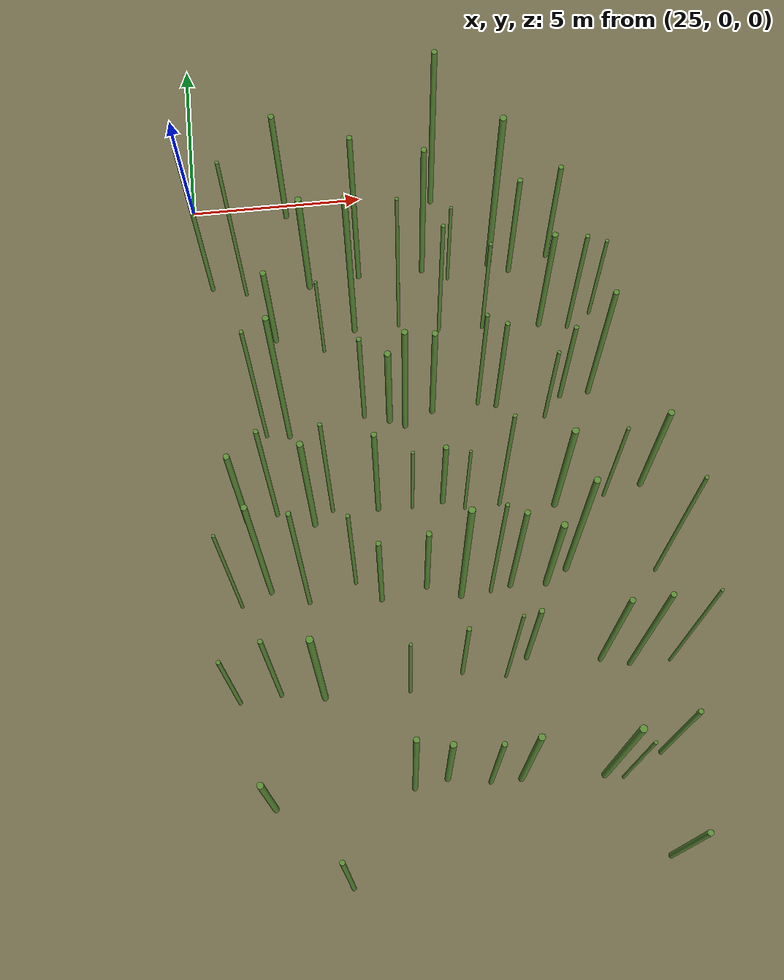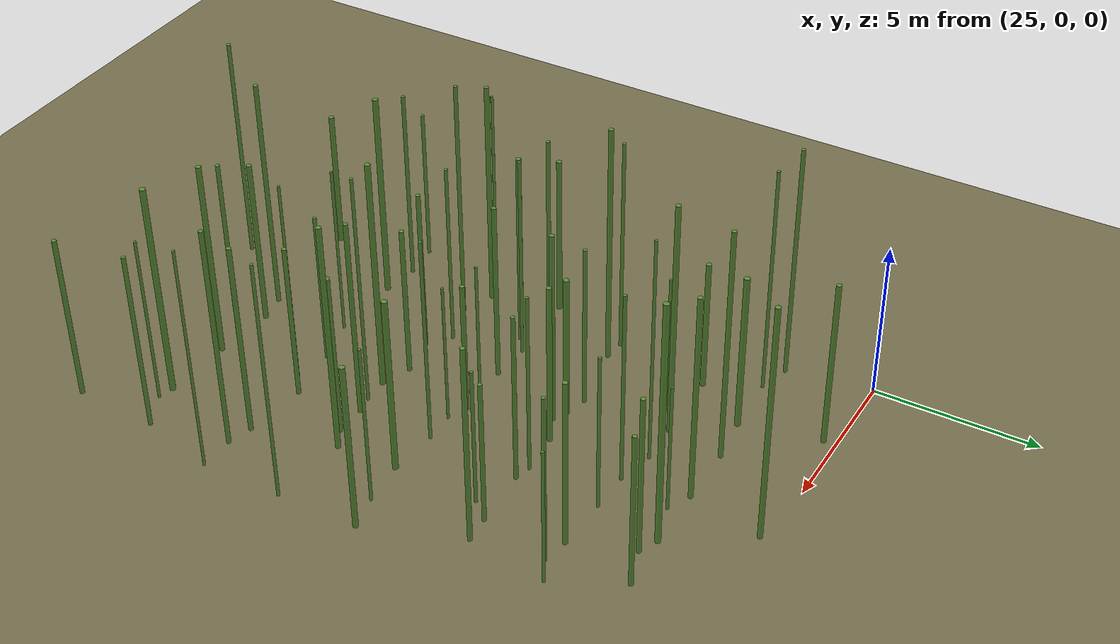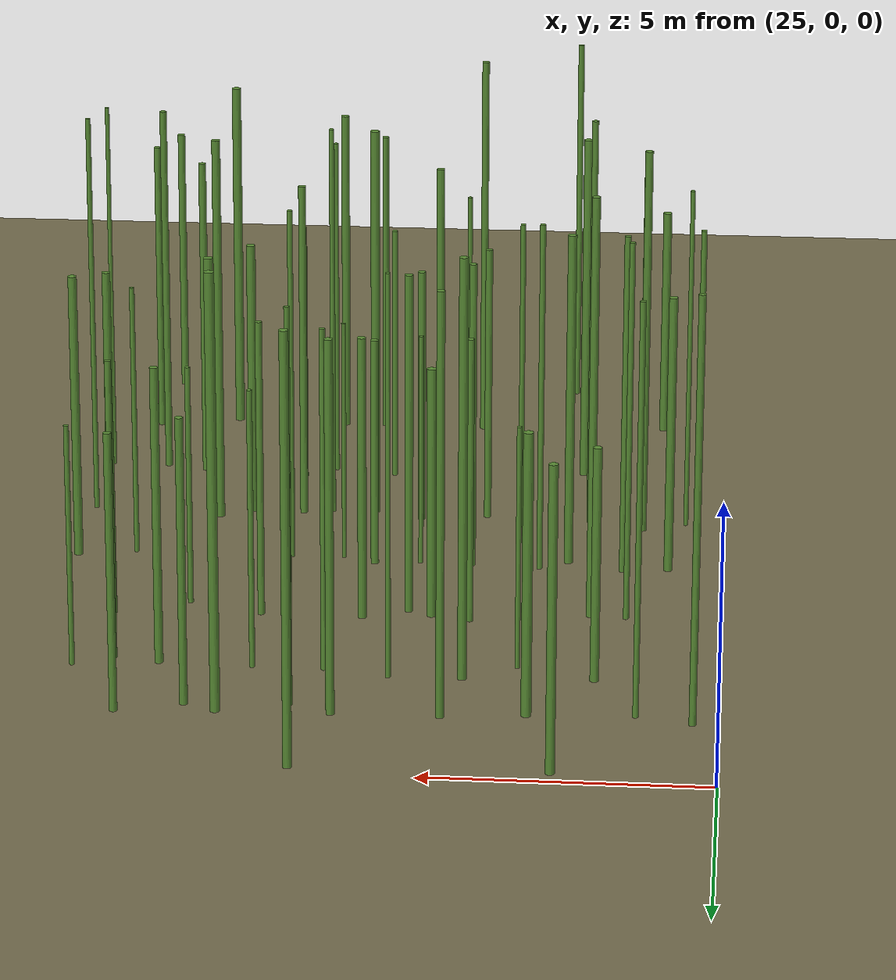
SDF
<sdf version="1.9">
 <world name="bamboo_field">
  <model name="ground_plane">
   <static>true</static>
   <link name="link">
    <collision name="collision">
     <geometry><plane><normal>0 0 1</normal><size>80.0 80.0</size></plane></geometry>
    </collision>
    <visual name="visual">
     <geometry><plane><normal>0 0 1</normal><size>80.0 80.0</size></plane></geometry>
     <material><diffuse>0.45 0.42 0.30 1</diffuse></material>
    </visual>
   </link>
  </model>
  <model name="bamboo_533">
   <static>true</static>
   <pose>28.188244298677958 -19.870869130054743 3.701343156073168 0 0 0</pose>
   <link name="link">
    <collision name="collision">
     <geometry>
      <cylinder><radius>0.05928577448796571</radius><length>7.402686312146336</length></cylinder>
     </geometry>
    </collision>
    <visual name="visual">
     <geometry>
      <cylinder><radius>0.05928577448796571</radius><length>7.402686312146336</length></cylinder>
     </geometry>
     <material><diffuse>0.35 0.55 0.20 1</diffuse><specular>0.1 0.1 0.1 1</specular></material>
    </visual>
   </link>
  </model>
  <model name="bamboo_537">
   <static>true</static>
   <pose>36.34750576949081 -19.83465553975704 2.6766012835368462 0 0 0</pose>
   <link name="link">
    <collision name="collision">
     <geometry>
      <cylinder><radius>0.07349221791071578</radius><length>5.3532025670736925</length></cylinder>
     </geometry>
    </collision>
    <visual name="visual">
     <geometry>
      <cylinder><radius>0.07349221791071578</radius><length>5.3532025670736925</length></cylinder>
     </geometry>
     <material><diffuse>0.35 0.55 0.20 1</diffuse><specular>0.1 0.1 0.1 1</specular></material>
    </visual>
   </link>
  </model>
  <model name="bamboo_597">
   <static>true</static>
   <pose>26.34279256075111 -17.72476737025921 2.2800033374324 0 0 0</pose>
   <link name="link">
    <collision name="collision">
     <geometry><cylinder><radius>0.08293568276853996</radius><length>4.5600066748648</length></cylinder></geometry>
    </collision>
    <visual name="visual">
     <geometry><cylinder><radius>0.08293568276853996</radius><length>4.5600066748648</length></cylinder></geometry>
     <material><diffuse>0.35 0.55 0.20 1</diffuse><specular>0.1 0.1 0.1 1</specular></material>
    </visual>
   </link>
  </model>
  <model name="bamboo_598">
   <static>true</static>
   <pose>29.972197570025518 -17.528603098932038 3.8126071547963667 0 0 0</pose>
   <link name="link">
    <collision name="collision">
     <geometry>
      <cylinder><radius>0.0695018155920359</radius><length>7.625214309592733</length></cylinder>
     </geometry>
    </collision>
    <visual name="visual">
     <geometry>
      <cylinder><radius>0.0695018155920359</radius><length>7.625214309592733</length></cylinder>
     </geometry>
     <material><diffuse>0.35 0.55 0.20 1</diffuse><specular>0.1 0.1 0.1 1</specular></material>
    </visual>
   </link>
  </model>
  <model name="bamboo_599">
   <static>true</static>
   <pose>30.841887694398995 -17.368530235182398 2.731637260206019 0 0 0</pose>
   <link name="link">
    <collision name="collision">
     <geometry>
      <cylinder><radius>0.0787598619418714</radius><length>5.463274520412038</length></cylinder>
     </geometry>
    </collision>
    <visual name="visual">
     <geometry>
      <cylinder><radius>0.0787598619418714</radius><length>5.463274520412038</length></cylinder>
     </geometry>
     <material><diffuse>0.35 0.55 0.20 1</diffuse><specular>0.1 0.1 0.1 1</specular></material>
    </visual>
   </link>
  </model>
  <model name="bamboo_600">
   <static>true</static>
   <pose>31.956613382301903 -17.55751453690822 3.020823986687571 0 0 0</pose>
   <link name="link">
    <collision name="collision">
     <geometry>
      <cylinder><radius>0.06323505710852263</radius><length>6.041647973375142</length></cylinder>
     </geometry>
    </collision>
    <visual name="visual">
     <geometry>
      <cylinder><radius>0.06323505710852263</radius><length>6.041647973375142</length></cylinder>
     </geometry>
     <material><diffuse>0.35 0.55 0.20 1</diffuse><specular>0.1 0.1 0.1 1</specular></material>
    </visual>
   </link>
  </model>
  <model name="bamboo_601">
   <static>true</static>
   <pose>32.7600256541211 -17.549135949313253 3.2280719531202564 0 0 0</pose>
   <link name="link">
    <collision name="collision">
     <geometry>
      <cylinder><radius>0.08032700284639492</radius><length>6.456143906240513</length></cylinder>
     </geometry>
    </collision>
    <visual name="visual">
     <geometry>
      <cylinder><radius>0.08032700284639492</radius><length>6.456143906240513</length></cylinder>
     </geometry>
     <material><diffuse>0.35 0.55 0.20 1</diffuse><specular>0.1 0.1 0.1 1</specular></material>
    </visual>
   </link>
  </model>
  <model name="bamboo_602">
   <static>true</static>
   <pose>34.940360468888585 -17.657874748482655 3.471839617669649 0 0 0</pose>
   <link name="link">
    <collision name="collision">
     <geometry>
      <cylinder><radius>0.08838677799187565</radius><length>6.943679235339298</length></cylinder>
     </geometry>
    </collision>
    <visual name="visual">
     <geometry>
      <cylinder><radius>0.08838677799187565</radius><length>6.943679235339298</length></cylinder>
     </geometry>
     <material><diffuse>0.35 0.55 0.20 1</diffuse><specular>0.1 0.1 0.1 1</specular></material>
    </visual>
   </link>
  </model>
  <model name="bamboo_603">
   <static>true</static>
   <pose>35.41940163337004 -17.764289773372468 2.738870370894949 0 0 0</pose>
   <link name="link">
    <collision name="collision">
     <geometry>
      <cylinder><radius>0.04314305807067346</radius><length>5.477740741789898</length></cylinder>
     </geometry>
    </collision>
    <visual name="visual">
     <geometry>
      <cylinder><radius>0.04314305807067346</radius><length>5.477740741789898</length></cylinder>
     </geometry>
     <material><diffuse>0.35 0.55 0.20 1</diffuse><specular>0.1 0.1 0.1 1</specular></material>
    </visual>
   </link>
  </model>
  <model name="bamboo_604">
   <static>true</static>
   <pose>36.485032382063 -17.222618778230547 2.9092868995897767 0 0 0</pose>
   <link name="link">
    <collision name="collision">
     <geometry>
      <cylinder><radius>0.06348371145051045</radius><length>5.818573799179553</length></cylinder>
     </geometry>
    </collision>
    <visual name="visual">
     <geometry>
      <cylinder><radius>0.06348371145051045</radius><length>5.818573799179553</length></cylinder>
     </geometry>
     <material><diffuse>0.35 0.55 0.20 1</diffuse><specular>0.1 0.1 0.1 1</specular></material>
    </visual>
   </link>
  </model>
  <model name="bamboo_663">
   <static>true</static>
   <pose>25.577622832256342 -14.878679475593929 2.5349447817412756 0 0 0</pose>
   <link name="link">
    <collision name="collision">
     <geometry>
      <cylinder><radius>0.05456781763972099</radius><length>5.069889563482551</length></cylinder>
     </geometry>
    </collision>
    <visual name="visual">
     <geometry>
      <cylinder><radius>0.05456781763972099</radius><length>5.069889563482551</length></cylinder>
     </geometry>
     <material><diffuse>0.35 0.55 0.20 1</diffuse><specular>0.1 0.1 0.1 1</specular></material>
    </visual>
   </link>
  </model>
  <model name="bamboo_664">
   <static>true</static>
   <pose>26.680199405082647 -14.778760803928302 3.173839547052021 0 0 0</pose>
   <link name="link">
    <collision name="collision">
     <geometry>
      <cylinder><radius>0.058158242012521434</radius><length>6.347679094104042</length></cylinder>
     </geometry>
    </collision>
    <visual name="visual">
     <geometry>
      <cylinder><radius>0.058158242012521434</radius><length>6.347679094104042</length></cylinder>
     </geometry>
     <material><diffuse>0.35 0.55 0.20 1</diffuse><specular>0.1 0.1 0.1 1</specular></material>
    </visual>
   </link>
  </model>
  <model name="bamboo_665">
   <static>true</static>
   <pose>27.8250399448341 -14.951715821012117 3.4013938568493685 0 0 0</pose>
   <link name="link">
    <collision name="collision">
     <geometry>
      <cylinder><radius>0.08702186686689978</radius><length>6.802787713698737</length></cylinder>
     </geometry>
    </collision>
    <visual name="visual">
     <geometry>
      <cylinder><radius>0.08702186686689978</radius><length>6.802787713698737</length></cylinder>
     </geometry>
     <material><diffuse>0.35 0.55 0.20 1</diffuse><specular>0.1 0.1 0.1 1</specular></material>
    </visual>
   </link>
  </model>
  <model name="bamboo_666">
   <static>true</static>
   <pose>30.097172205017387 -15.010277305566392 2.7940250415203387 0 0 0</pose>
   <link name="link">
    <collision name="collision">
     <geometry>
      <cylinder><radius>0.041318245668312055</radius><length>5.588050083040677</length></cylinder>
     </geometry>
    </collision>
    <visual name="visual">
     <geometry>
      <cylinder><radius>0.041318245668312055</radius><length>5.588050083040677</length></cylinder>
     </geometry>
     <material><diffuse>0.35 0.55 0.20 1</diffuse><specular>0.1 0.1 0.1 1</specular></material>
    </visual>
   </link>
  </model>
  <model name="bamboo_667">
   <static>true</static>
   <pose>31.52751141648787 -14.630016667301541 2.4947930386303847 0 0 0</pose>
   <link name="link">
    <collision name="collision">
     <geometry>
      <cylinder><radius>0.05546853267749993</radius><length>4.989586077260769</length></cylinder>
     </geometry>
    </collision>
    <visual name="visual">
     <geometry>
      <cylinder><radius>0.05546853267749993</radius><length>4.989586077260769</length></cylinder>
     </geometry>
     <material><diffuse>0.35 0.55 0.20 1</diffuse><specular>0.1 0.1 0.1 1</specular></material>
    </visual>
   </link>
  </model>
  <model name="bamboo_668">
   <static>true</static>
   <pose>32.683357736887324 -14.840912224880338 3.327098270607609 0 0 0</pose>
   <link name="link">
    <collision name="collision">
     <geometry>
      <cylinder><radius>0.04142856465099565</radius><length>6.654196541215218</length></cylinder>
     </geometry>
    </collision>
    <visual name="visual">
     <geometry>
      <cylinder><radius>0.04142856465099565</radius><length>6.654196541215218</length></cylinder>
     </geometry>
     <material><diffuse>0.35 0.55 0.20 1</diffuse><specular>0.1 0.1 0.1 1</specular></material>
    </visual>
   </link>
  </model>
  <model name="bamboo_669">
   <static>true</static>
   <pose>33.282952913619624 -14.389873561351692 2.5448288552246283 0 0 0</pose>
   <link name="link">
    <collision name="collision">
     <geometry>
      <cylinder><radius>0.06702920806961415</radius><length>5.089657710449257</length></cylinder>
     </geometry>
    </collision>
    <visual name="visual">
     <geometry>
      <cylinder><radius>0.06702920806961415</radius><length>5.089657710449257</length></cylinder>
     </geometry>
     <material><diffuse>0.35 0.55 0.20 1</diffuse><specular>0.1 0.1 0.1 1</specular></material>
    </visual>
   </link>
  </model>
  <model name="bamboo_670">
   <static>true</static>
   <pose>35.25606615430571 -14.620883372442306 3.1279689734425746 0 0 0</pose>
   <link name="link">
    <collision name="collision">
     <geometry>
      <cylinder><radius>0.07179255682129179</radius><length>6.255937946885149</length></cylinder>
     </geometry>
    </collision>
    <visual name="visual">
     <geometry>
      <cylinder><radius>0.07179255682129179</radius><length>6.255937946885149</length></cylinder>
     </geometry>
     <material><diffuse>0.35 0.55 0.20 1</diffuse><specular>0.1 0.1 0.1 1</specular></material>
    </visual>
   </link>
  </model>
  <model name="bamboo_671">
   <static>true</static>
   <pose>36.02281103640672 -14.81250482117601 3.609415532492906 0 0 0</pose>
   <link name="link">
    <collision name="collision">
     <geometry>
      <cylinder><radius>0.06698340610680298</radius><length>7.218831064985812</length></cylinder>
     </geometry>
    </collision>
    <visual name="visual">
     <geometry>
      <cylinder><radius>0.06698340610680298</radius><length>7.218831064985812</length></cylinder>
     </geometry>
     <material><diffuse>0.35 0.55 0.20 1</diffuse><specular>0.1 0.1 0.1 1</specular></material>
    </visual>
   </link>
  </model>
  <model name="bamboo_672">
   <static>true</static>
   <pose>37.110994181946104 -14.827833704464878 3.6307595783217765 0 0 0</pose>
   <link name="link">
    <collision name="collision">
     <geometry>
      <cylinder><radius>0.0400046173197464</radius><length>7.261519156643553</length></cylinder>
     </geometry>
    </collision>
    <visual name="visual">
     <geometry>
      <cylinder><radius>0.0400046173197464</radius><length>7.261519156643553</length></cylinder>
     </geometry>
     <material><diffuse>0.35 0.55 0.20 1</diffuse><specular>0.1 0.1 0.1 1</specular></material>
    </visual>
   </link>
  </model>
  <model name="bamboo_730">
   <static>true</static>
   <pose>25.77504964864665 -12.270938883827762 3.309515743630774 0 0 0</pose>
   <link name="link">
    <collision name="collision">
     <geometry>
      <cylinder><radius>0.04265426243281395</radius><length>6.619031487261548</length></cylinder>
     </geometry>
    </collision>
    <visual name="visual">
     <geometry>
      <cylinder><radius>0.04265426243281395</radius><length>6.619031487261548</length></cylinder>
     </geometry>
     <material><diffuse>0.35 0.55 0.20 1</diffuse><specular>0.1 0.1 0.1 1</specular></material>
    </visual>
   </link>
  </model>
  <model name="bamboo_731">
   <static>true</static>
   <pose>26.59109470435882 -11.93580317689551 3.728564547119907 0 0 0</pose>
   <link name="link">
    <collision name="collision">
     <geometry>
      <cylinder><radius>0.07300501866646825</radius><length>7.457129094239814</length></cylinder>
     </geometry>
    </collision>
    <visual name="visual">
     <geometry>
      <cylinder><radius>0.07300501866646825</radius><length>7.457129094239814</length></cylinder>
     </geometry>
     <material><diffuse>0.35 0.55 0.20 1</diffuse><specular>0.1 0.1 0.1 1</specular></material>
    </visual>
   </link>
  </model>
  <model name="bamboo_732">
   <static>true</static>
   <pose>27.607226933795555 -12.322171308377502 3.953223879779708 0 0 0</pose>
   <link name="link">
    <collision name="collision">
     <geometry>
      <cylinder><radius>0.059035060148142394</radius><length>7.906447759559416</length></cylinder>
     </geometry>
    </collision>
    <visual name="visual">
     <geometry>
      <cylinder><radius>0.059035060148142394</radius><length>7.906447759559416</length></cylinder>
     </geometry>
     <material><diffuse>0.35 0.55 0.20 1</diffuse><specular>0.1 0.1 0.1 1</specular></material>
    </visual>
   </link>
  </model>
  <model name="bamboo_733">
   <static>true</static>
   <pose>28.904803817220472 -11.894545505775143 3.0013016457377577 0 0 0</pose>
   <link name="link">
    <collision name="collision">
     <geometry>
      <cylinder><radius>0.04932086937087595</radius><length>6.002603291475515</length></cylinder>
     </geometry>
    </collision>
    <visual name="visual">
     <geometry>
      <cylinder><radius>0.04932086937087595</radius><length>6.002603291475515</length></cylinder>
     </geometry>
     <material><diffuse>0.35 0.55 0.20 1</diffuse><specular>0.1 0.1 0.1 1</specular></material>
    </visual>
   </link>
  </model>
  <model name="bamboo_734">
   <static>true</static>
   <pose>29.568188689481858 -12.433086811480065 2.6671392692615514 0 0 0</pose>
   <link name="link">
    <collision name="collision">
     <geometry>
      <cylinder><radius>0.06647076819275599</radius><length>5.334278538523103</length></cylinder>
     </geometry>
    </collision>
    <visual name="visual">
     <geometry>
      <cylinder><radius>0.06647076819275599</radius><length>5.334278538523103</length></cylinder>
     </geometry>
     <material><diffuse>0.35 0.55 0.20 1</diffuse><specular>0.1 0.1 0.1 1</specular></material>
    </visual>
   </link>
  </model>
  <model name="bamboo_735">
   <static>true</static>
   <pose>30.816291765236965 -12.192114464069636 2.472409531414425 0 0 0</pose>
   <link name="link">
    <collision name="collision">
     <geometry>
      <cylinder><radius>0.07126154851255051</radius><length>4.94481906282885</length></cylinder>
     </geometry>
    </collision>
    <visual name="visual">
     <geometry>
      <cylinder><radius>0.07126154851255051</radius><length>4.94481906282885</length></cylinder>
     </geometry>
     <material><diffuse>0.35 0.55 0.20 1</diffuse><specular>0.1 0.1 0.1 1</specular></material>
    </visual>
   </link>
  </model>
  <model name="bamboo_736">
   <static>true</static>
   <pose>31.72667896858052 -12.522364357975002 3.7808041721575227 0 0 0</pose>
   <link name="link">
    <collision name="collision">
     <geometry>
      <cylinder><radius>0.08393386370955802</radius><length>7.5616083443150455</length></cylinder>
     </geometry>
    </collision>
    <visual name="visual">
     <geometry>
      <cylinder><radius>0.08393386370955802</radius><length>7.5616083443150455</length></cylinder>
     </geometry>
     <material><diffuse>0.35 0.55 0.20 1</diffuse><specular>0.1 0.1 0.1 1</specular></material>
    </visual>
   </link>
  </model>
  <model name="bamboo_737">
   <static>true</static>
   <pose>32.53810589410914 -12.481533974897536 3.794350629938343 0 0 0</pose>
   <link name="link">
    <collision name="collision">
     <geometry>
      <cylinder><radius>0.04758540903843423</radius><length>7.588701259876686</length></cylinder>
     </geometry>
    </collision>
    <visual name="visual">
     <geometry>
      <cylinder><radius>0.04758540903843423</radius><length>7.588701259876686</length></cylinder>
     </geometry>
     <material><diffuse>0.35 0.55 0.20 1</diffuse><specular>0.1 0.1 0.1 1</specular></material>
    </visual>
   </link>
  </model>
  <model name="bamboo_738">
   <static>true</static>
   <pose>33.09033609580304 -12.374737921174244 3.2510492009896534 0 0 0</pose>
   <link name="link">
    <collision name="collision">
     <geometry>
      <cylinder><radius>0.07062241966750527</radius><length>6.502098401979307</length></cylinder>
     </geometry>
    </collision>
    <visual name="visual">
     <geometry>
      <cylinder><radius>0.07062241966750527</radius><length>6.502098401979307</length></cylinder>
     </geometry>
     <material><diffuse>0.35 0.55 0.20 1</diffuse><specular>0.1 0.1 0.1 1</specular></material>
    </visual>
   </link>
  </model>
  <model name="bamboo_739">
   <static>true</static>
   <pose>34.07179979909784 -12.39826039463094 2.658569476741093 0 0 0</pose>
   <link name="link">
    <collision name="collision">
     <geometry>
      <cylinder><radius>0.08548676967820856</radius><length>5.317138953482186</length></cylinder>
     </geometry>
    </collision>
    <visual name="visual">
     <geometry>
      <cylinder><radius>0.08548676967820856</radius><length>5.317138953482186</length></cylinder>
     </geometry>
     <material><diffuse>0.35 0.55 0.20 1</diffuse><specular>0.1 0.1 0.1 1</specular></material>
    </visual>
   </link>
  </model>
  <model name="bamboo_740">
   <static>true</static>
   <pose>34.66396566128665 -12.049395015444077 3.725175323160136 0 0 0</pose>
   <link name="link">
    <collision name="collision">
     <geometry>
      <cylinder><radius>0.08000525295820468</radius><length>7.450350646320272</length></cylinder>
     </geometry>
    </collision>
    <visual name="visual">
     <geometry>
      <cylinder><radius>0.08000525295820468</radius><length>7.450350646320272</length></cylinder>
     </geometry>
     <material><diffuse>0.35 0.55 0.20 1</diffuse><specular>0.1 0.1 0.1 1</specular></material>
    </visual>
   </link>
  </model>
  <model name="bamboo_741">
   <static>true</static>
   <pose>37.09744178193807 -12.32074313930429 3.8660598928458136 0 0 0</pose>
   <link name="link">
    <collision name="collision">
     <geometry>
      <cylinder><radius>0.04725761974462559</radius><length>7.732119785691627</length></cylinder>
     </geometry>
    </collision>
    <visual name="visual">
     <geometry>
      <cylinder><radius>0.04725761974462559</radius><length>7.732119785691627</length></cylinder>
     </geometry>
     <material><diffuse>0.35 0.55 0.20 1</diffuse><specular>0.1 0.1 0.1 1</specular></material>
    </visual>
   </link>
  </model>
  <model name="bamboo_802">
   <static>true</static>
   <pose>26.053106192769913 -9.862088774737488 2.651739456596223 0 0 0</pose>
   <link name="link">
    <collision name="collision">
     <geometry>
      <cylinder><radius>0.07983788866809804</radius><length>5.303478913192446</length></cylinder>
     </geometry>
    </collision>
    <visual name="visual">
     <geometry>
      <cylinder><radius>0.07983788866809804</radius><length>5.303478913192446</length></cylinder>
     </geometry>
     <material><diffuse>0.35 0.55 0.20 1</diffuse><specular>0.1 0.1 0.1 1</specular></material>
    </visual>
   </link>
  </model>
  <model name="bamboo_803">
   <static>true</static>
   <pose>26.895152742284278 -9.735066220562084 3.241749677713082 0 0 0</pose>
   <link name="link">
    <collision name="collision">
     <geometry>
      <cylinder><radius>0.06067209528333518</radius><length>6.483499355426164</length></cylinder>
     </geometry>
    </collision>
    <visual name="visual">
     <geometry>
      <cylinder><radius>0.06067209528333518</radius><length>6.483499355426164</length></cylinder>
     </geometry>
     <material><diffuse>0.35 0.55 0.20 1</diffuse><specular>0.1 0.1 0.1 1</specular></material>
    </visual>
   </link>
  </model>
  <model name="bamboo_804">
   <static>true</static>
   <pose>27.914134797331833 -10.11204283680025 3.1819403980843495 0 0 0</pose>
   <link name="link">
    <collision name="collision">
     <geometry>
      <cylinder><radius>0.08069578524457657</radius><length>6.363880796168699</length></cylinder>
     </geometry>
    </collision>
    <visual name="visual">
     <geometry>
      <cylinder><radius>0.08069578524457657</radius><length>6.363880796168699</length></cylinder>
     </geometry>
     <material><diffuse>0.35 0.55 0.20 1</diffuse><specular>0.1 0.1 0.1 1</specular></material>
    </visual>
   </link>
  </model>
  <model name="bamboo_805">
   <static>true</static>
   <pose>28.434571803747957 -9.765186151062816 3.3252245138526737 0 0 0</pose>
   <link name="link">
    <collision name="collision">
     <geometry>
      <cylinder><radius>0.0518077159572711</radius><length>6.650449027705347</length></cylinder>
     </geometry>
    </collision>
    <visual name="visual">
     <geometry>
      <cylinder><radius>0.0518077159572711</radius><length>6.650449027705347</length></cylinder>
     </geometry>
     <material><diffuse>0.35 0.55 0.20 1</diffuse><specular>0.1 0.1 0.1 1</specular></material>
    </visual>
   </link>
  </model>
  <model name="bamboo_806">
   <static>true</static>
   <pose>29.698282429109607 -9.84137429579646 2.9258168686237647 0 0 0</pose>
   <link name="link">
    <collision name="collision">
     <geometry>
      <cylinder><radius>0.0696081567541046</radius><length>5.851633737247529</length></cylinder>
     </geometry>
    </collision>
    <visual name="visual">
     <geometry>
      <cylinder><radius>0.0696081567541046</radius><length>5.851633737247529</length></cylinder>
     </geometry>
     <material><diffuse>0.35 0.55 0.20 1</diffuse><specular>0.1 0.1 0.1 1</specular></material>
    </visual>
   </link>
  </model>
  <model name="bamboo_807">
   <static>true</static>
   <pose>30.650037343127675 -9.876850067206815 2.2174892676697473 0 0 0</pose>
   <link name="link">
    <collision name="collision">
     <geometry>
      <cylinder><radius>0.043480381741471286</radius><length>4.434978535339495</length></cylinder>
     </geometry>
    </collision>
    <visual name="visual">
     <geometry>
      <cylinder><radius>0.043480381741471286</radius><length>4.434978535339495</length></cylinder>
     </geometry>
     <material><diffuse>0.35 0.55 0.20 1</diffuse><specular>0.1 0.1 0.1 1</specular></material>
    </visual>
   </link>
  </model>
  <model name="bamboo_808">
   <static>true</static>
   <pose>31.50367855742927 -9.795707356814404 2.1810660096647108 0 0 0</pose>
   <link name="link">
    <collision name="collision">
     <geometry>
      <cylinder><radius>0.07300823795105599</radius><length>4.3621320193294215</length></cylinder>
     </geometry>
    </collision>
    <visual name="visual">
     <geometry>
      <cylinder><radius>0.07300823795105599</radius><length>4.3621320193294215</length></cylinder>
     </geometry>
     <material><diffuse>0.35 0.55 0.20 1</diffuse><specular>0.1 0.1 0.1 1</specular></material>
    </visual>
   </link>
  </model>
  <model name="bamboo_809">
   <static>true</static>
   <pose>32.09750894861154 -10.04491135766357 2.293450708104393 0 0 0</pose>
   <link name="link">
    <collision name="collision">
     <geometry>
      <cylinder><radius>0.04000921702276085</radius><length>4.586901416208786</length></cylinder>
     </geometry>
    </collision>
    <visual name="visual">
     <geometry>
      <cylinder><radius>0.04000921702276085</radius><length>4.586901416208786</length></cylinder>
     </geometry>
     <material><diffuse>0.35 0.55 0.20 1</diffuse><specular>0.1 0.1 0.1 1</specular></material>
    </visual>
   </link>
  </model>
  <model name="bamboo_810">
   <static>true</static>
   <pose>33.07066891253942 -10.017596946917545 3.3630335759732923 0 0 0</pose>
   <link name="link">
    <collision name="collision">
     <geometry>
      <cylinder><radius>0.0497833310088745</radius><length>6.726067151946585</length></cylinder>
     </geometry>
    </collision>
    <visual name="visual">
     <geometry>
      <cylinder><radius>0.0497833310088745</radius><length>6.726067151946585</length></cylinder>
     </geometry>
     <material><diffuse>0.35 0.55 0.20 1</diffuse><specular>0.1 0.1 0.1 1</specular></material>
    </visual>
   </link>
  </model>
  <model name="bamboo_811">
   <static>true</static>
   <pose>34.60213842901486 -10.175805193914842 2.8694540667204738 0 0 0</pose>
   <link name="link">
    <collision name="collision">
     <geometry>
      <cylinder><radius>0.08716666487480568</radius><length>5.7389081334409475</length></cylinder>
     </geometry>
    </collision>
    <visual name="visual">
     <geometry>
      <cylinder><radius>0.08716666487480568</radius><length>5.7389081334409475</length></cylinder>
     </geometry>
     <material><diffuse>0.35 0.55 0.20 1</diffuse><specular>0.1 0.1 0.1 1</specular></material>
    </visual>
   </link>
  </model>
  <model name="bamboo_812">
   <static>true</static>
   <pose>36.00307186328839 -10.032570836793798 2.5883693257333418 0 0 0</pose>
   <link name="link">
    <collision name="collision">
     <geometry>
      <cylinder><radius>0.04637778485287174</radius><length>5.1767386514666835</length></cylinder>
     </geometry>
    </collision>
    <visual name="visual">
     <geometry>
      <cylinder><radius>0.04637778485287174</radius><length>5.1767386514666835</length></cylinder>
     </geometry>
     <material><diffuse>0.35 0.55 0.20 1</diffuse><specular>0.1 0.1 0.1 1</specular></material>
    </visual>
   </link>
  </model>
  <model name="bamboo_813">
   <static>true</static>
   <pose>37.06874025000948 -9.810814686635306 2.718489261116062 0 0 0</pose>
   <link name="link">
    <collision name="collision">
     <geometry>
      <cylinder><radius>0.08103766418199845</radius><length>5.436978522232124</length></cylinder>
     </geometry>
    </collision>
    <visual name="visual">
     <geometry>
      <cylinder><radius>0.08103766418199845</radius><length>5.436978522232124</length></cylinder>
     </geometry>
     <material><diffuse>0.35 0.55 0.20 1</diffuse><specular>0.1 0.1 0.1 1</specular></material>
    </visual>
   </link>
  </model>
  <model name="bamboo_871">
   <static>true</static>
   <pose>26.746448770865232 -7.381253867946134 3.5406625662217177 0 0 0</pose>
   <link name="link">
    <collision name="collision">
     <geometry>
      <cylinder><radius>0.05096380668290555</radius><length>7.081325132443435</length></cylinder>
     </geometry>
    </collision>
    <visual name="visual">
     <geometry>
      <cylinder><radius>0.05096380668290555</radius><length>7.081325132443435</length></cylinder>
     </geometry>
     <material><diffuse>0.35 0.55 0.20 1</diffuse><specular>0.1 0.1 0.1 1</specular></material>
    </visual>
   </link>
  </model>
  <model name="bamboo_872">
   <static>true</static>
   <pose>27.39449634508476 -7.451325804533502 3.937147675625747 0 0 0</pose>
   <link name="link">
    <collision name="collision">
     <geometry>
      <cylinder><radius>0.07426218772075388</radius><length>7.874295351251494</length></cylinder>
     </geometry>
    </collision>
    <visual name="visual">
     <geometry>
      <cylinder><radius>0.07426218772075388</radius><length>7.874295351251494</length></cylinder>
     </geometry>
     <material><diffuse>0.35 0.55 0.20 1</diffuse><specular>0.1 0.1 0.1 1</specular></material>
    </visual>
   </link>
  </model>
  <model name="bamboo_873">
   <static>true</static>
   <pose>29.552016318076266 -7.043866862109952 2.668589258444597 0 0 0</pose>
   <link name="link">
    <collision name="collision">
     <geometry>
      <cylinder><radius>0.06173358211345291</radius><length>5.337178516889194</length></cylinder>
     </geometry>
    </collision>
    <visual name="visual">
     <geometry>
      <cylinder><radius>0.06173358211345291</radius><length>5.337178516889194</length></cylinder>
     </geometry>
     <material><diffuse>0.35 0.55 0.20 1</diffuse><specular>0.1 0.1 0.1 1</specular></material>
    </visual>
   </link>
  </model>
  <model name="bamboo_874">
   <static>true</static>
   <pose>30.25558015160397 -7.235209499475791 2.351775216431105 0 0 0</pose>
   <link name="link">
    <collision name="collision">
     <geometry>
      <cylinder><radius>0.08624306728592539</radius><length>4.70355043286221</length></cylinder>
     </geometry>
    </collision>
    <visual name="visual">
     <geometry>
      <cylinder><radius>0.08624306728592539</radius><length>4.70355043286221</length></cylinder>
     </geometry>
     <material><diffuse>0.35 0.55 0.20 1</diffuse><specular>0.1 0.1 0.1 1</specular></material>
    </visual>
   </link>
  </model>
  <model name="bamboo_875">
   <static>true</static>
   <pose>30.680342393156327 -7.435626499810291 3.185413324531343 0 0 0</pose>
   <link name="link">
    <collision name="collision">
     <geometry>
      <cylinder><radius>0.07607015402794662</radius><length>6.370826649062686</length></cylinder>
     </geometry>
    </collision>
    <visual name="visual">
     <geometry>
      <cylinder><radius>0.07607015402794662</radius><length>6.370826649062686</length></cylinder>
     </geometry>
     <material><diffuse>0.35 0.55 0.20 1</diffuse><specular>0.1 0.1 0.1 1</specular></material>
    </visual>
   </link>
  </model>
  <model name="bamboo_876">
   <static>true</static>
   <pose>31.491547685142685 -7.058328970486474 2.6522644494143437 0 0 0</pose>
   <link name="link">
    <collision name="collision">
     <geometry>
      <cylinder><radius>0.0789487639479834</radius><length>5.304528898828687</length></cylinder>
     </geometry>
    </collision>
    <visual name="visual">
     <geometry>
      <cylinder><radius>0.0789487639479834</radius><length>5.304528898828687</length></cylinder>
     </geometry>
     <material><diffuse>0.35 0.55 0.20 1</diffuse><specular>0.1 0.1 0.1 1</specular></material>
    </visual>
   </link>
  </model>
  <model name="bamboo_877">
   <static>true</static>
   <pose>32.80994271379372 -6.951410285971946 2.9419805196686424 0 0 0</pose>
   <link name="link">
    <collision name="collision">
     <geometry>
      <cylinder><radius>0.051033137915108245</radius><length>5.883961039337285</length></cylinder>
     </geometry>
    </collision>
    <visual name="visual">
     <geometry>
      <cylinder><radius>0.051033137915108245</radius><length>5.883961039337285</length></cylinder>
     </geometry>
     <material><diffuse>0.35 0.55 0.20 1</diffuse><specular>0.1 0.1 0.1 1</specular></material>
    </visual>
   </link>
  </model>
  <model name="bamboo_878">
   <static>true</static>
   <pose>33.324317051652024 -7.070877625407144 2.7746606077773137 0 0 0</pose>
   <link name="link">
    <collision name="collision">
     <geometry>
      <cylinder><radius>0.06274954362886427</radius><length>5.549321215554627</length></cylinder>
     </geometry>
    </collision>
    <visual name="visual">
     <geometry>
      <cylinder><radius>0.06274954362886427</radius><length>5.549321215554627</length></cylinder>
     </geometry>
     <material><diffuse>0.35 0.55 0.20 1</diffuse><specular>0.1 0.1 0.1 1</specular></material>
    </visual>
   </link>
  </model>
  <model name="bamboo_879">
   <static>true</static>
   <pose>34.66618963886408 -7.532996272948887 2.25442352938793 0 0 0</pose>
   <link name="link">
    <collision name="collision">
     <geometry>
      <cylinder><radius>0.050110544538457445</radius><length>4.50884705877586</length></cylinder>
     </geometry>
    </collision>
    <visual name="visual">
     <geometry>
      <cylinder><radius>0.050110544538457445</radius><length>4.50884705877586</length></cylinder>
     </geometry>
     <material><diffuse>0.35 0.55 0.20 1</diffuse><specular>0.1 0.1 0.1 1</specular></material>
    </visual>
   </link>
  </model>
  <model name="bamboo_880">
   <static>true</static>
   <pose>35.1767460737061 -6.9542661963215275 2.3424026334336334 0 0 0</pose>
   <link name="link">
    <collision name="collision">
     <geometry>
      <cylinder><radius>0.06292894624852531</radius><length>4.684805266867267</length></cylinder>
     </geometry>
    </collision>
    <visual name="visual">
     <geometry>
      <cylinder><radius>0.06292894624852531</radius><length>4.684805266867267</length></cylinder>
     </geometry>
     <material><diffuse>0.35 0.55 0.20 1</diffuse><specular>0.1 0.1 0.1 1</specular></material>
    </visual>
   </link>
  </model>
  <model name="bamboo_881">
   <static>true</static>
   <pose>35.99665209993165 -6.895657387354683 3.2230561808582854 0 0 0</pose>
   <link name="link">
    <collision name="collision">
     <geometry>
      <cylinder><radius>0.07189996069400018</radius><length>6.446112361716571</length></cylinder>
     </geometry>
    </collision>
    <visual name="visual">
     <geometry>
      <cylinder><radius>0.07189996069400018</radius><length>6.446112361716571</length></cylinder>
     </geometry>
     <material><diffuse>0.35 0.55 0.20 1</diffuse><specular>0.1 0.1 0.1 1</specular></material>
    </visual>
   </link>
  </model>
  <model name="bamboo_937">
   <static>true</static>
   <pose>27.197695214997168 -4.422569701209336 2.155470595043993 0 0 0</pose>
   <link name="link">
    <collision name="collision">
     <geometry>
      <cylinder><radius>0.07920148615230702</radius><length>4.310941190087986</length></cylinder>
     </geometry>
    </collision>
    <visual name="visual">
     <geometry>
      <cylinder><radius>0.07920148615230702</radius><length>4.310941190087986</length></cylinder>
     </geometry>
     <material><diffuse>0.35 0.55 0.20 1</diffuse><specular>0.1 0.1 0.1 1</specular></material>
    </visual>
   </link>
  </model>
  <model name="bamboo_938">
   <static>true</static>
   <pose>28.56674817820762 -4.906330372457781 2.2378444359977436 0 0 0</pose>
   <link name="link">
    <collision name="collision">
     <geometry>
      <cylinder><radius>0.042963261853561675</radius><length>4.475688871995487</length></cylinder>
     </geometry>
    </collision>
    <visual name="visual">
     <geometry>
      <cylinder><radius>0.042963261853561675</radius><length>4.475688871995487</length></cylinder>
     </geometry>
     <material><diffuse>0.35 0.55 0.20 1</diffuse><specular>0.1 0.1 0.1 1</specular></material>
    </visual>
   </link>
  </model>
  <model name="bamboo_939">
   <static>true</static>
   <pose>29.50045484835133 -4.321881118266375 3.8401961416273114 0 0 0</pose>
   <link name="link">
    <collision name="collision">
     <geometry>
      <cylinder><radius>0.07911854070566354</radius><length>7.680392283254623</length></cylinder>
     </geometry>
    </collision>
    <visual name="visual">
     <geometry>
      <cylinder><radius>0.07911854070566354</radius><length>7.680392283254623</length></cylinder>
     </geometry>
     <material><diffuse>0.35 0.55 0.20 1</diffuse><specular>0.1 0.1 0.1 1</specular></material>
    </visual>
   </link>
  </model>
  <model name="bamboo_940">
   <static>true</static>
   <pose>30.789878233249347 -4.288549401715422 3.6917230449050367 0 0 0</pose>
   <link name="link">
    <collision name="collision">
     <geometry>
      <cylinder><radius>0.044538965651972955</radius><length>7.383446089810073</length></cylinder>
     </geometry>
    </collision>
    <visual name="visual">
     <geometry>
      <cylinder><radius>0.044538965651972955</radius><length>7.383446089810073</length></cylinder>
     </geometry>
     <material><diffuse>0.35 0.55 0.20 1</diffuse><specular>0.1 0.1 0.1 1</specular></material>
    </visual>
   </link>
  </model>
  <model name="bamboo_941">
   <static>true</static>
   <pose>31.939349109650635 -4.548009950560021 3.1404707143953 0 0 0</pose>
   <link name="link">
    <collision name="collision">
     <geometry>
      <cylinder><radius>0.052091126108508266</radius><length>6.2809414287906</length></cylinder>
     </geometry>
    </collision>
    <visual name="visual">
     <geometry>
      <cylinder><radius>0.052091126108508266</radius><length>6.2809414287906</length></cylinder>
     </geometry>
     <material><diffuse>0.35 0.55 0.20 1</diffuse><specular>0.1 0.1 0.1 1</specular></material>
    </visual>
   </link>
  </model>
  <model name="bamboo_942">
   <static>true</static>
   <pose>33.20673105911738 -4.576714982962601 2.563713582929573 0 0 0</pose>
   <link name="link">
    <collision name="collision">
     <geometry>
      <cylinder><radius>0.04957737600962214</radius><length>5.127427165859146</length></cylinder>
     </geometry>
    </collision>
    <visual name="visual">
     <geometry>
      <cylinder><radius>0.04957737600962214</radius><length>5.127427165859146</length></cylinder>
     </geometry>
     <material><diffuse>0.35 0.55 0.20 1</diffuse><specular>0.1 0.1 0.1 1</specular></material>
    </visual>
   </link>
  </model>
  <model name="bamboo_943">
   <static>true</static>
   <pose>34.86317337097134 -4.644937444838593 2.7329260512908236 0 0 0</pose>
   <link name="link">
    <collision name="collision">
     <geometry>
      <cylinder><radius>0.07538780453604292</radius><length>5.465852102581647</length></cylinder>
     </geometry>
    </collision>
    <visual name="visual">
     <geometry>
      <cylinder><radius>0.07538780453604292</radius><length>5.465852102581647</length></cylinder>
     </geometry>
     <material><diffuse>0.35 0.55 0.20 1</diffuse><specular>0.1 0.1 0.1 1</specular></material>
    </visual>
   </link>
  </model>
  <model name="bamboo_944">
   <static>true</static>
   <pose>35.68369786586756 -4.793415576476788 2.7592301133884765 0 0 0</pose>
   <link name="link">
    <collision name="collision">
     <geometry>
      <cylinder><radius>0.0577411172469337</radius><length>5.518460226776953</length></cylinder>
     </geometry>
    </collision>
    <visual name="visual">
     <geometry>
      <cylinder><radius>0.0577411172469337</radius><length>5.518460226776953</length></cylinder>
     </geometry>
     <material><diffuse>0.35 0.55 0.20 1</diffuse><specular>0.1 0.1 0.1 1</specular></material>
    </visual>
   </link>
  </model>
  <model name="bamboo_945">
   <static>true</static>
   <pose>36.373982915929346 -4.419111949704244 2.2206323224265514 0 0 0</pose>
   <link name="link">
    <collision name="collision">
     <geometry>
      <cylinder><radius>0.04618077012371335</radius><length>4.441264644853103</length></cylinder>
     </geometry>
    </collision>
    <visual name="visual">
     <geometry>
      <cylinder><radius>0.04618077012371335</radius><length>4.441264644853103</length></cylinder>
     </geometry>
     <material><diffuse>0.35 0.55 0.20 1</diffuse><specular>0.1 0.1 0.1 1</specular></material>
    </visual>
   </link>
  </model>
  <model name="bamboo_1006">
   <static>true</static>
   <pose>25.45364231568259 -2.5999893821199214 3.839978097800685 0 0 0</pose>
   <link name="link">
    <collision name="collision">
     <geometry>
      <cylinder><radius>0.06175793676575993</radius><length>7.67995619560137</length></cylinder>
     </geometry>
    </collision>
    <visual name="visual">
     <geometry>
      <cylinder><radius>0.06175793676575993</radius><length>7.67995619560137</length></cylinder>
     </geometry>
     <material><diffuse>0.35 0.55 0.20 1</diffuse><specular>0.1 0.1 0.1 1</specular></material>
    </visual>
   </link>
  </model>
  <model name="bamboo_1007">
   <static>true</static>
   <pose>26.43093711013072 -2.8699430310402354 3.723873448571748 0 0 0</pose>
   <link name="link">
    <collision name="collision">
     <geometry>
      <cylinder><radius>0.049527208263446504</radius><length>7.447746897143496</length></cylinder>
     </geometry>
    </collision>
    <visual name="visual">
     <geometry>
      <cylinder><radius>0.049527208263446504</radius><length>7.447746897143496</length></cylinder>
     </geometry>
     <material><diffuse>0.35 0.55 0.20 1</diffuse><specular>0.1 0.1 0.1 1</specular></material>
    </visual>
   </link>
  </model>
  <model name="bamboo_1008">
   <static>true</static>
   <pose>28.297686159717404 -2.778684718250521 2.5659344900653966 0 0 0</pose>
   <link name="link">
    <collision name="collision">
     <geometry>
      <cylinder><radius>0.08976037249866459</radius><length>5.131868980130793</length></cylinder>
     </geometry>
    </collision>
    <visual name="visual">
     <geometry>
      <cylinder><radius>0.08976037249866459</radius><length>5.131868980130793</length></cylinder>
     </geometry>
     <material><diffuse>0.35 0.55 0.20 1</diffuse><specular>0.1 0.1 0.1 1</specular></material>
    </visual>
   </link>
  </model>
  <model name="bamboo_1009">
   <static>true</static>
   <pose>29.761887346932514 -2.592529451736056 3.814656469945877 0 0 0</pose>
   <link name="link">
    <collision name="collision">
     <geometry>
      <cylinder><radius>0.07088401200286175</radius><length>7.629312939891754</length></cylinder>
     </geometry>
    </collision>
    <visual name="visual">
     <geometry>
      <cylinder><radius>0.07088401200286175</radius><length>7.629312939891754</length></cylinder>
     </geometry>
     <material><diffuse>0.35 0.55 0.20 1</diffuse><specular>0.1 0.1 0.1 1</specular></material>
    </visual>
   </link>
  </model>
  <model name="bamboo_1010">
   <static>true</static>
   <pose>31.639023712579288 -2.575599195374998 3.3737048985394487 0 0 0</pose>
   <link name="link">
    <collision name="collision">
     <geometry>
      <cylinder><radius>0.0746511778971384</radius><length>6.747409797078897</length></cylinder>
     </geometry>
    </collision>
    <visual name="visual">
     <geometry>
      <cylinder><radius>0.0746511778971384</radius><length>6.747409797078897</length></cylinder>
     </geometry>
     <material><diffuse>0.35 0.55 0.20 1</diffuse><specular>0.1 0.1 0.1 1</specular></material>
    </visual>
   </link>
  </model>
  <model name="bamboo_1011">
   <static>true</static>
   <pose>32.367133968790576 -2.9071274042763657 2.117504627289066 0 0 0</pose>
   <link name="link">
    <collision name="collision">
     <geometry>
      <cylinder><radius>0.04476397110410033</radius><length>4.235009254578132</length></cylinder>
     </geometry>
    </collision>
    <visual name="visual">
     <geometry>
      <cylinder><radius>0.04476397110410033</radius><length>4.235009254578132</length></cylinder>
     </geometry>
     <material><diffuse>0.35 0.55 0.20 1</diffuse><specular>0.1 0.1 0.1 1</specular></material>
    </visual>
   </link>
  </model>
  <model name="bamboo_1012">
   <static>true</static>
   <pose>33.6161832515103 -2.547747123772404 3.9344196886159253 0 0 0</pose>
   <link name="link">
    <collision name="collision">
     <geometry>
      <cylinder><radius>0.08696609700873179</radius><length>7.868839377231851</length></cylinder>
     </geometry>
    </collision>
    <visual name="visual">
     <geometry>
      <cylinder><radius>0.08696609700873179</radius><length>7.868839377231851</length></cylinder>
     </geometry>
     <material><diffuse>0.35 0.55 0.20 1</diffuse><specular>0.1 0.1 0.1 1</specular></material>
    </visual>
   </link>
  </model>
  <model name="bamboo_1013">
   <static>true</static>
   <pose>34.19191332403344 -2.8118855628788264 2.605014711283503 0 0 0</pose>
   <link name="link">
    <collision name="collision">
     <geometry>
      <cylinder><radius>0.07098289384727838</radius><length>5.210029422567006</length></cylinder>
     </geometry>
    </collision>
    <visual name="visual">
     <geometry>
      <cylinder><radius>0.07098289384727838</radius><length>5.210029422567006</length></cylinder>
     </geometry>
     <material><diffuse>0.35 0.55 0.20 1</diffuse><specular>0.1 0.1 0.1 1</specular></material>
    </visual>
   </link>
  </model>
  <model name="bamboo_1014">
   <static>true</static>
   <pose>35.35547138345757 -2.4202875532265025 2.520583304313816 0 0 0</pose>
   <link name="link">
    <collision name="collision">
     <geometry>
      <cylinder><radius>0.0690243454945729</radius><length>5.041166608627632</length></cylinder>
     </geometry>
    </collision>
    <visual name="visual">
     <geometry>
      <cylinder><radius>0.0690243454945729</radius><length>5.041166608627632</length></cylinder>
     </geometry>
     <material><diffuse>0.35 0.55 0.20 1</diffuse><specular>0.1 0.1 0.1 1</specular></material>
    </visual>
   </link>
  </model>
  <model name="bamboo_1064">
   <static>true</static>
   <pose>27.766153980661176 -0.37040338066796535 2.7235487393102087 0 0 0</pose>
   <link name="link">
    <collision name="collision">
     <geometry>
      <cylinder><radius>0.0797303673186148</radius><length>5.447097478620417</length></cylinder>
     </geometry>
    </collision>
    <visual name="visual">
     <geometry>
      <cylinder><radius>0.0797303673186148</radius><length>5.447097478620417</length></cylinder>
     </geometry>
     <material><diffuse>0.35 0.55 0.20 1</diffuse><specular>0.1 0.1 0.1 1</specular></material>
    </visual>
   </link>
  </model>
  <model name="bamboo_1068">
   <static>true</static>
   <pose>32.13102978539585 -0.2764658734629584 3.818461706402262 0 0 0</pose>
   <link name="link">
    <collision name="collision">
     <geometry>
      <cylinder><radius>0.07713487510148258</radius><length>7.636923412804524</length></cylinder>
     </geometry>
    </collision>
    <visual name="visual">
     <geometry>
      <cylinder><radius>0.07713487510148258</radius><length>7.636923412804524</length></cylinder>
     </geometry>
     <material><diffuse>0.35 0.55 0.20 1</diffuse><specular>0.1 0.1 0.1 1</specular></material>
    </visual>
   </link>
  </model>
 </world>
</sdf>
